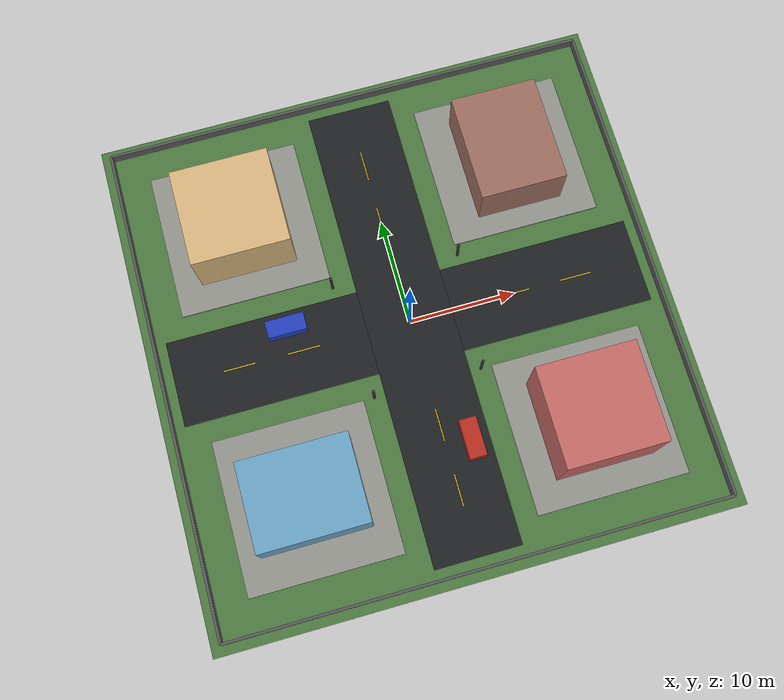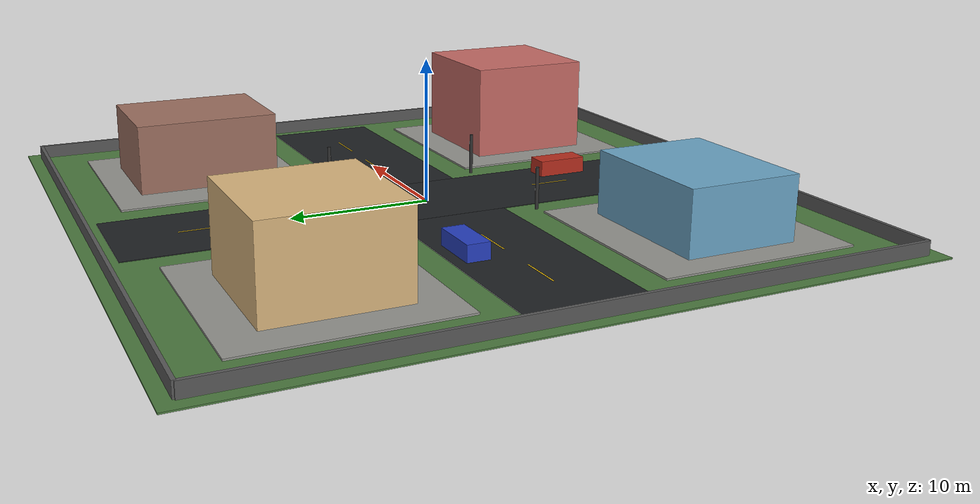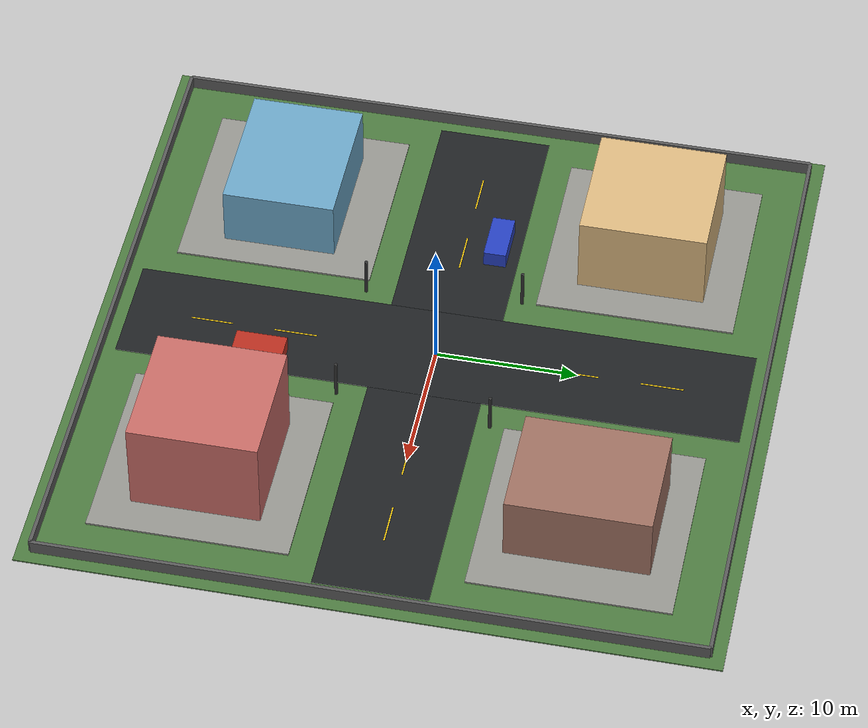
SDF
<?xml version="1.0"?>
<sdf version="1.8">
  <world name="city_space">
    <physics name="1ms" type="ode">
      <max_step_size>0.001</max_step_size>
      <real_time_factor>1.0</real_time_factor>
      <real_time_update_rate>1000</real_time_update_rate>
    </physics>

    <plugin filename="gz-sim-physics-system"
            name="gz::sim::systems::Physics"/>
    <plugin filename="gz-sim-user-commands-system"
            name="gz::sim::systems::UserCommands"/>
    <plugin filename="gz-sim-scene-broadcaster-system"
            name="gz::sim::systems::SceneBroadcaster"/>
    <plugin filename="gz-sim-sensors-system"
            name="gz::sim::systems::Sensors">
      <render_engine>ogre2</render_engine>
    </plugin>

    <scene>
      <ambient>0.65 0.65 0.65 1</ambient>
      <background>0.55 0.75 0.95 1</background>
      <shadows>true</shadows>
      <grid>false</grid>
    </scene>

    <light name="sun" type="directional">
      <pose>0 0 20 0 0 0</pose>
      <cast_shadows>true</cast_shadows>
      <diffuse>0.95 0.95 0.9 1</diffuse>
      <specular>0.2 0.2 0.2 1</specular>
      <direction>-0.5 0.3 -1</direction>
    </light>

    <!-- Ground and two crossing asphalt roads. -->
    <model name="ground">
      <static>true</static>
      <link name="link">
        <collision name="collision">
          <geometry><box><size>48 48 0.1</size></box></geometry>
        </collision>
        <visual name="visual">
          <geometry><box><size>48 48 0.1</size></box></geometry>
          <material>
            <ambient>0.30 0.48 0.25 1</ambient>
            <diffuse>0.30 0.48 0.25 1</diffuse>
          </material>
        </visual>
      </link>
    </model>

    <model name="east_west_road">
      <static>true</static>
      <pose>0 0 0.06 0 0 0</pose>
      <link name="link">
        <collision name="collision">
          <geometry><box><size>44 8 0.08</size></box></geometry>
        </collision>
        <visual name="visual">
          <geometry><box><size>44 8 0.08</size></box></geometry>
          <material><diffuse>0.12 0.13 0.14 1</diffuse></material>
        </visual>
      </link>
    </model>

    <model name="north_south_road">
      <static>true</static>
      <pose>0 0 0.065 0 0 0</pose>
      <link name="link">
        <collision name="collision">
          <geometry><box><size>8 44 0.08</size></box></geometry>
        </collision>
        <visual name="visual">
          <geometry><box><size>8 44 0.08</size></box></geometry>
          <material><diffuse>0.12 0.13 0.14 1</diffuse></material>
        </visual>
      </link>
    </model>

    <!-- Dashed centre markings are visual only, so they cannot catch wheels. -->
    <model name="road_markings">
      <static>true</static>
      <link name="link">
        <visual name="ew_1"><pose>-16 0 0.115 0 0 0</pose><geometry><box><size>3 0.10 0.01</size></box></geometry><material><diffuse>1 0.8 0.05 1</diffuse></material></visual>
        <visual name="ew_2"><pose>-10 0 0.115 0 0 0</pose><geometry><box><size>3 0.10 0.01</size></box></geometry><material><diffuse>1 0.8 0.05 1</diffuse></material></visual>
        <visual name="ew_3"><pose>10 0 0.115 0 0 0</pose><geometry><box><size>3 0.10 0.01</size></box></geometry><material><diffuse>1 0.8 0.05 1</diffuse></material></visual>
        <visual name="ew_4"><pose>16 0 0.115 0 0 0</pose><geometry><box><size>3 0.10 0.01</size></box></geometry><material><diffuse>1 0.8 0.05 1</diffuse></material></visual>
        <visual name="ns_1"><pose>0 -16 0.12 0 0 1.5708</pose><geometry><box><size>3 0.10 0.01</size></box></geometry><material><diffuse>1 0.8 0.05 1</diffuse></material></visual>
        <visual name="ns_2"><pose>0 -10 0.12 0 0 1.5708</pose><geometry><box><size>3 0.10 0.01</size></box></geometry><material><diffuse>1 0.8 0.05 1</diffuse></material></visual>
        <visual name="ns_3"><pose>0 10 0.12 0 0 1.5708</pose><geometry><box><size>3 0.10 0.01</size></box></geometry><material><diffuse>1 0.8 0.05 1</diffuse></material></visual>
        <visual name="ns_4"><pose>0 16 0.12 0 0 1.5708</pose><geometry><box><size>3 0.10 0.01</size></box></geometry><material><diffuse>1 0.8 0.05 1</diffuse></material></visual>
      </link>
    </model>

    <!-- Raised pavement blocks define four city blocks. -->
    <model name="sidewalks">
      <static>true</static>
      <link name="link">
        <collision name="nw_collision"><pose>-13 13 0.09 0 0 0</pose><geometry><box><size>14 14 0.18</size></box></geometry></collision>
        <visual name="nw_visual"><pose>-13 13 0.09 0 0 0</pose><geometry><box><size>14 14 0.18</size></box></geometry><material><diffuse>0.58 0.58 0.56 1</diffuse></material></visual>
        <collision name="ne_collision"><pose>13 13 0.09 0 0 0</pose><geometry><box><size>14 14 0.18</size></box></geometry></collision>
        <visual name="ne_visual"><pose>13 13 0.09 0 0 0</pose><geometry><box><size>14 14 0.18</size></box></geometry><material><diffuse>0.58 0.58 0.56 1</diffuse></material></visual>
        <collision name="sw_collision"><pose>-13 -13 0.09 0 0 0</pose><geometry><box><size>14 14 0.18</size></box></geometry></collision>
        <visual name="sw_visual"><pose>-13 -13 0.09 0 0 0</pose><geometry><box><size>14 14 0.18</size></box></geometry><material><diffuse>0.58 0.58 0.56 1</diffuse></material></visual>
        <collision name="se_collision"><pose>13 -13 0.09 0 0 0</pose><geometry><box><size>14 14 0.18</size></box></geometry></collision>
        <visual name="se_visual"><pose>13 -13 0.09 0 0 0</pose><geometry><box><size>14 14 0.18</size></box></geometry><material><diffuse>0.58 0.58 0.56 1</diffuse></material></visual>
      </link>
    </model>

    <!-- Buildings use simple collision geometry for dependable LiDAR mapping. -->
    <model name="building_nw"><static>true</static><pose>-13 13 3.1 0 0 0</pose><link name="link"><collision name="collision"><geometry><box><size>9 9 6</size></box></geometry></collision><visual name="visual"><geometry><box><size>9 9 6</size></box></geometry><material><diffuse>0.86 0.72 0.50 1</diffuse></material></visual></link></model>
    <model name="building_ne"><static>true</static><pose>13 13 2.6 0 0 0</pose><link name="link"><collision name="collision"><geometry><box><size>8 10 5</size></box></geometry></collision><visual name="visual"><geometry><box><size>8 10 5</size></box></geometry><material><diffuse>0.62 0.44 0.38 1</diffuse></material></visual></link></model>
    <model name="building_sw"><static>true</static><pose>-13 -13 2.35 0 0 0</pose><link name="link"><collision name="collision"><geometry><box><size>10 8 4.5</size></box></geometry></collision><visual name="visual"><geometry><box><size>10 8 4.5</size></box></geometry><material><diffuse>0.42 0.65 0.78 1</diffuse></material></visual></link></model>
    <model name="building_se"><static>true</static><pose>13 -13 3.6 0 0 0</pose><link name="link"><collision name="collision"><geometry><box><size>9 9 7</size></box></geometry></collision><visual name="visual"><geometry><box><size>9 9 7</size></box></geometry><material><diffuse>0.78 0.42 0.40 1</diffuse></material></visual></link></model>

    <!-- Street lamps and parked vehicles provide useful local obstacles. -->
    <model name="street_furniture">
      <static>true</static>
      <link name="link">
        <collision name="lamp_1_collision"><pose>6 5 1.5 0 0 0</pose><geometry><cylinder><radius>0.12</radius><length>3</length></cylinder></geometry></collision>
        <visual name="lamp_1_visual"><pose>6 5 1.5 0 0 0</pose><geometry><cylinder><radius>0.12</radius><length>3</length></cylinder></geometry><material><diffuse>0.2 0.2 0.2 1</diffuse></material></visual>
        <collision name="lamp_2_collision"><pose>-6 5 1.5 0 0 0</pose><geometry><cylinder><radius>0.12</radius><length>3</length></cylinder></geometry></collision>
        <visual name="lamp_2_visual"><pose>-6 5 1.5 0 0 0</pose><geometry><cylinder><radius>0.12</radius><length>3</length></cylinder></geometry><material><diffuse>0.2 0.2 0.2 1</diffuse></material></visual>
        <collision name="lamp_3_collision"><pose>5 -6 1.5 0 0 0</pose><geometry><cylinder><radius>0.12</radius><length>3</length></cylinder></geometry></collision>
        <visual name="lamp_3_visual"><pose>5 -6 1.5 0 0 0</pose><geometry><cylinder><radius>0.12</radius><length>3</length></cylinder></geometry><material><diffuse>0.2 0.2 0.2 1</diffuse></material></visual>
        <collision name="lamp_4_collision"><pose>-5 -6 1.5 0 0 0</pose><geometry><cylinder><radius>0.12</radius><length>3</length></cylinder></geometry></collision>
        <visual name="lamp_4_visual"><pose>-5 -6 1.5 0 0 0</pose><geometry><cylinder><radius>0.12</radius><length>3</length></cylinder></geometry><material><diffuse>0.2 0.2 0.2 1</diffuse></material></visual>
        <collision name="car_1_collision"><pose>-11 2.4 0.65 0 0 0</pose><geometry><box><size>3.6 1.6 1.2</size></box></geometry></collision>
        <visual name="car_1_visual"><pose>-11 2.4 0.65 0 0 0</pose><geometry><box><size>3.6 1.6 1.2</size></box></geometry><material><diffuse>0.15 0.25 0.75 1</diffuse></material></visual>
        <collision name="car_2_collision"><pose>2.4 -12 0.65 0 0 1.5708</pose><geometry><box><size>3.6 1.6 1.2</size></box></geometry></collision>
        <visual name="car_2_visual"><pose>2.4 -12 0.65 0 0 1.5708</pose><geometry><box><size>3.6 1.6 1.2</size></box></geometry><material><diffuse>0.72 0.18 0.12 1</diffuse></material></visual>
      </link>
    </model>

    <!-- Low perimeter barriers keep autonomous exploration inside the map. -->
    <model name="city_boundary">
      <static>true</static>
      <link name="link">
        <collision name="north"><pose>0 23 0.5 0 0 0</pose><geometry><box><size>46 0.25 1</size></box></geometry></collision>
        <visual name="north_v"><pose>0 23 0.5 0 0 0</pose><geometry><box><size>46 0.25 1</size></box></geometry><material><diffuse>0.35 0.35 0.35 1</diffuse></material></visual>
        <collision name="south"><pose>0 -23 0.5 0 0 0</pose><geometry><box><size>46 0.25 1</size></box></geometry></collision>
        <visual name="south_v"><pose>0 -23 0.5 0 0 0</pose><geometry><box><size>46 0.25 1</size></box></geometry><material><diffuse>0.35 0.35 0.35 1</diffuse></material></visual>
        <collision name="east"><pose>23 0 0.5 0 0 0</pose><geometry><box><size>0.25 46 1</size></box></geometry></collision>
        <visual name="east_v"><pose>23 0 0.5 0 0 0</pose><geometry><box><size>0.25 46 1</size></box></geometry><material><diffuse>0.35 0.35 0.35 1</diffuse></material></visual>
        <collision name="west"><pose>-23 0 0.5 0 0 0</pose><geometry><box><size>0.25 46 1</size></box></geometry></collision>
        <visual name="west_v"><pose>-23 0 0.5 0 0 0</pose><geometry><box><size>0.25 46 1</size></box></geometry><material><diffuse>0.35 0.35 0.35 1</diffuse></material></visual>
      </link>
    </model>
  </world>
</sdf>
